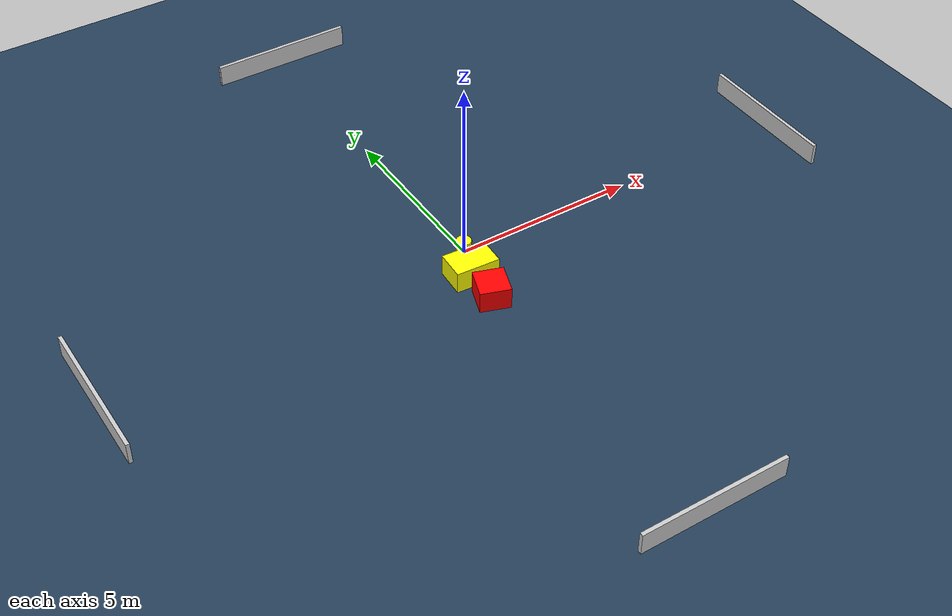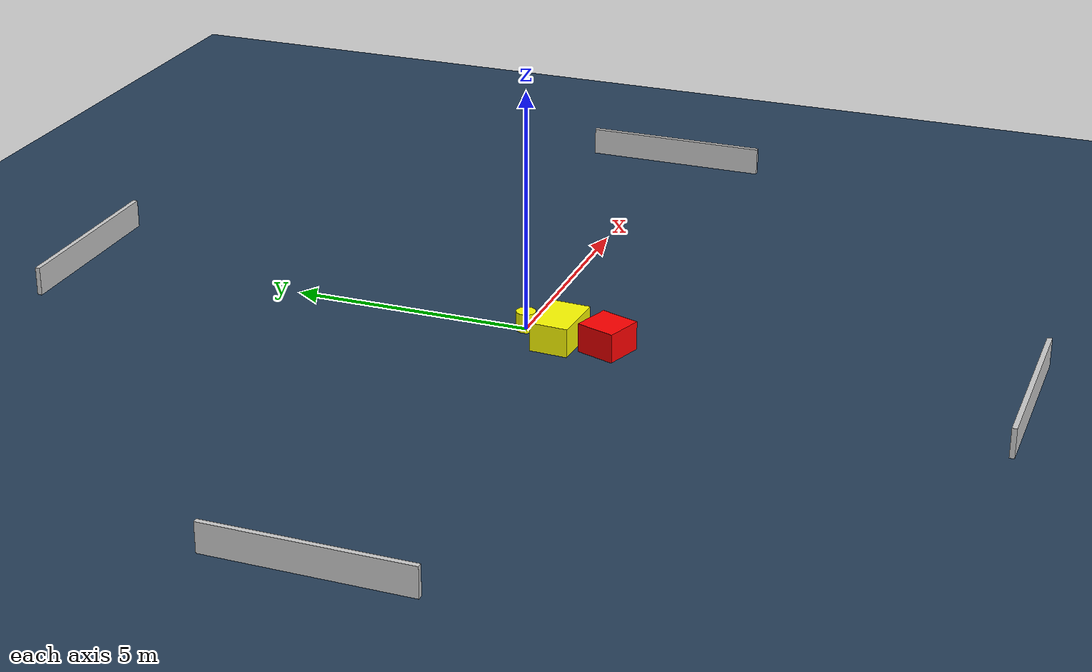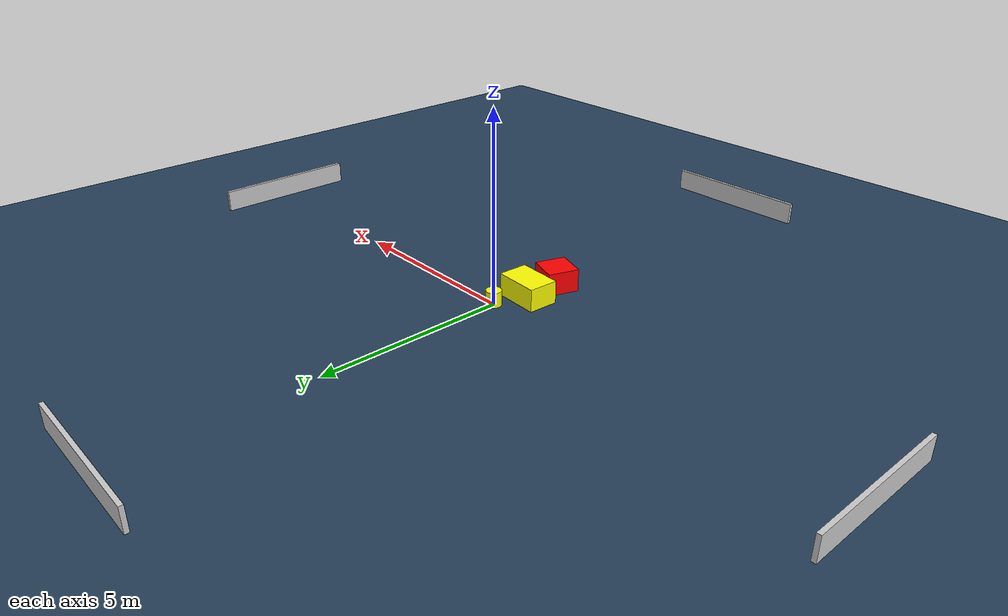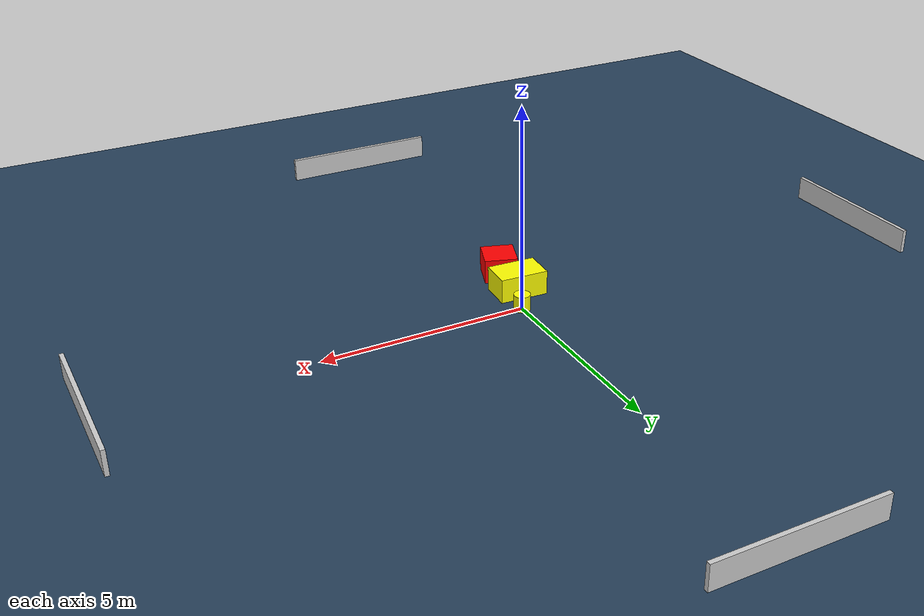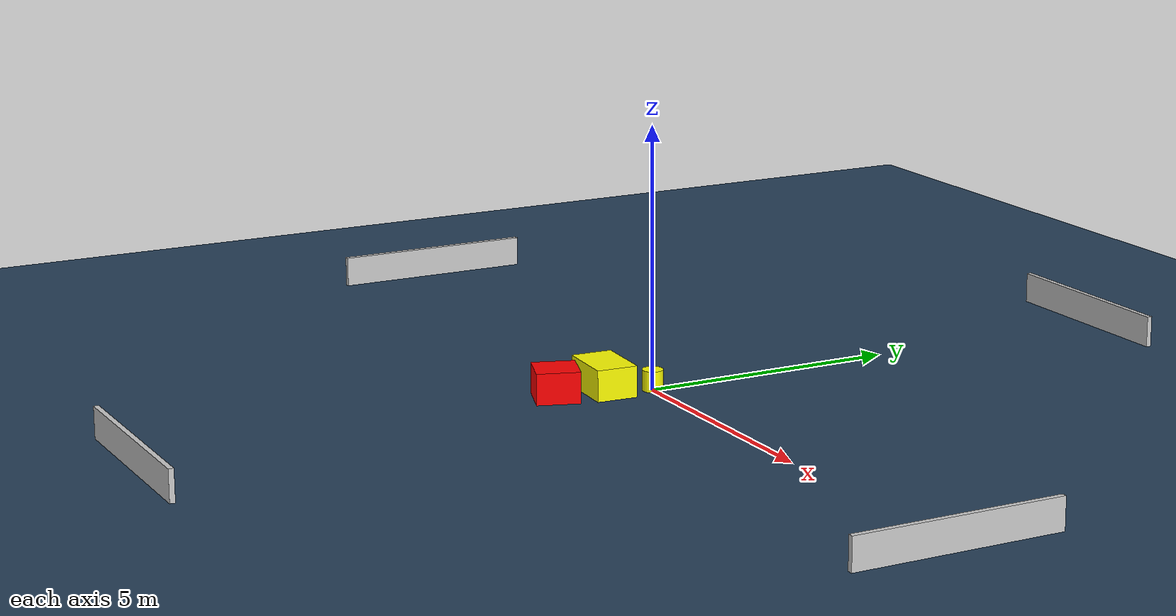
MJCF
<?xml version="1.0" ?>
<mujoco model="generated_environment">
  <option timestep="0.01" integrator="RK4" cone="elliptic"/>
  <default>
    <geom density="1"/>
  </default>
  <asset>
    <texture builtin="gradient" height="3072" name="skybox" rgb1="0.3 0.5 0.7" rgb2="0 0 0" type="skybox" width="512"/>
    <texture builtin="checker" height="300" name="groundplane" rgb1="0.2 0.3 0.4" rgb2="0.1 0.2 0.3" type="2d" width="300"/>
    <material name="groundplane" reflectance="0.2" texrepeat="5 5" texture="groundplane"/>
  </asset>
  <worldbody>
    <light dir="0 0 -1" directional="true" pos="0 0 1.5"/>
    <geom condim="3" friction="0.5 0.005 0.001" material="groundplane" name="floor" pos="0 0 0" size="0 0 0.05" type="plane"/>
    <body name="walls">
      <geom name="wall_1" condim="4" pos="-10.0 0.0 0.3" rgba="0.800000011920929 0.800000011920929 0.800000011920929 1.0" size="0.05 2.0 0.3" type="box"/>
      <geom name="wall_2" condim="4" pos="10.0 0.0 0.3" rgba="0.800000011920929 0.800000011920929 0.800000011920929 1.0" size="0.05 2.0 0.3" type="box"/>
      <geom name="wall_3" condim="4" pos="0.0 -10.0 0.3" rgba="0.800000011920929 0.800000011920929 0.800000011920929 1.0" size="2.0 0.05 0.3" type="box"/>
      <geom name="wall_4" condim="4" pos="0.0 10.0 0.3" rgba="0.800000011920929 0.800000011920929 0.800000011920929 1.0" size="2.0 0.05 0.3" type="box"/>
    </body>
    <body name="robot">
      <joint name="joint_x" type="slide" pos="0 0 0" axis="1 0 0"/>
      <joint name="joint_y" type="slide" pos="0 0 0" axis="0 1 0"/>
      <geom name="robot" type="cylinder" pos="0.0 0.0 0.2" size="0.2 0.2 0.0" mass="5.0" friction="1.0 0.005 0.0001" condim="4" rgba="1.0 1.0 0.0 1.0"/>
    </body>
    <body name="obstacle_1_movable">
      <geom name="obstacle_1_movable" condim="4" pos="-0.33178260728502024 -0.8381562255458991 0.3" euler="0 0 86.82920520834924" friction="0.0 0.005 0.001" rgba="1.0 1.0 0.0 1.0" size="0.3990648809579781 0.5940935647855279 0.3" type="box" mass="0.1"/>
      <joint type="free"/>
    </body>
    <body name="obstacle_2_static">
      <geom name="obstacle_2_static" condim="4" pos="-0.3524538271200658 -1.832538625313777 0.3" euler="0 0 161.11888647304653" friction="0.0 0.005 0.001" rgba="1.0 0.0 0.0 1.0" size="0.4043534135200993 0.4132754213481571 0.3" type="box"/>
    </body>
  </worldbody>
  <actuator>
    <motor name="actuator_x" joint="joint_x" gear="1" ctrlrange="-1 1"/>
    <motor name="actuator_y" joint="joint_y" gear="1" ctrlrange="-1 1"/>
  </actuator>
</mujoco>
